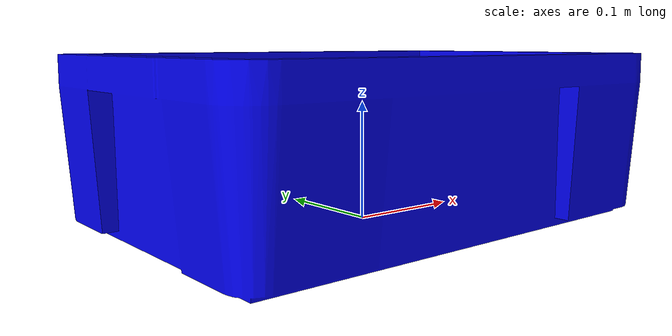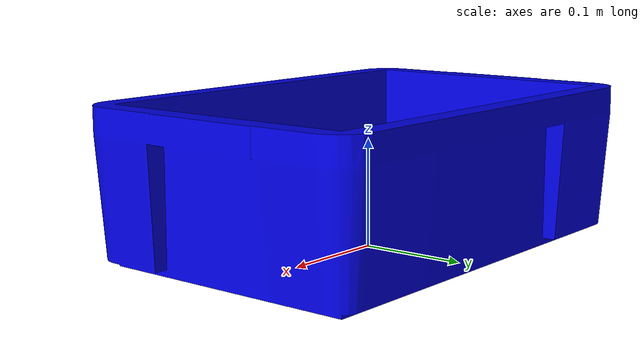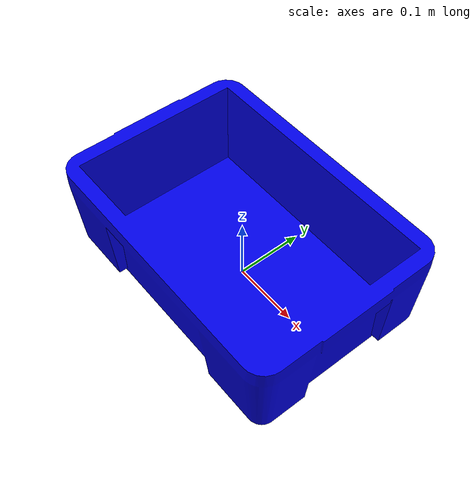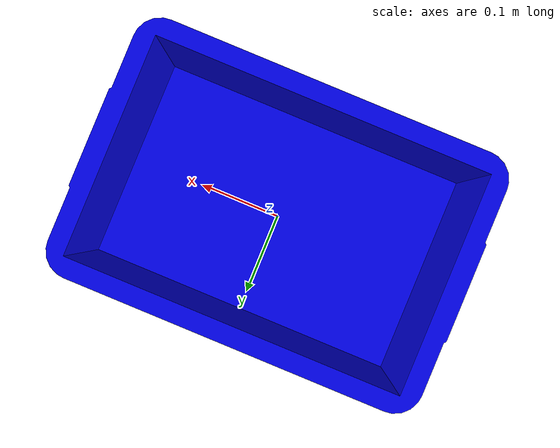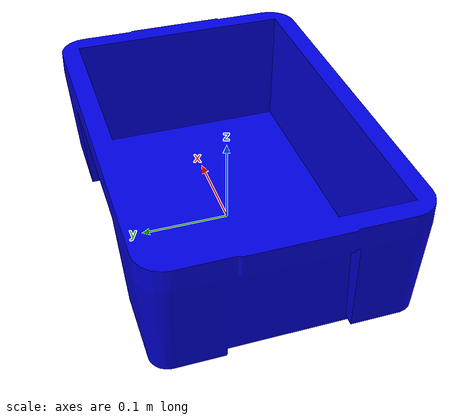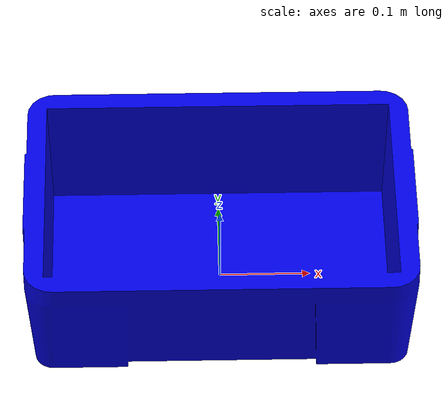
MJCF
<mujoco model="box_no_lid">
    <default>
        <default class="collision">
            <geom condim="3" group="0" rgba="0.266754 0.174546 0.0644028 1"/>
        </default>
        <default class="visual">
            <geom condim="3" group="1" conaffinity="0" contype="0"/>
        </default>
    </default>

    <asset>
        <mesh name="box_no_lid_mesh" file="@MODULE_INSTALL_LOCATION@/meshes/box_no_lid/box_no_lid.stl"/>
    </asset>

    <worldbody>
        <body name="base_link">
            <joint name="root" type="free"/>
            <inertial
                    pos="-1.3935e-07 1.7253e-08 0.069726"
                    mass="0.762"
                    fullinertia="0.011200 0.020869 0.028982 -7.7224e-10 3.9475e-09 -4.8870e-10"/>

            <geom class="collision" type="mesh"
                  mesh="box_no_lid_mesh"
                  rgba="0.0 0.0 0.9 1"/>
            <geom class="visual" type="mesh"
                  mesh="box_no_lid_mesh"
                  rgba="0.0 0.0 0.9 1"/>
        </body>
    </worldbody>
</mujoco>
